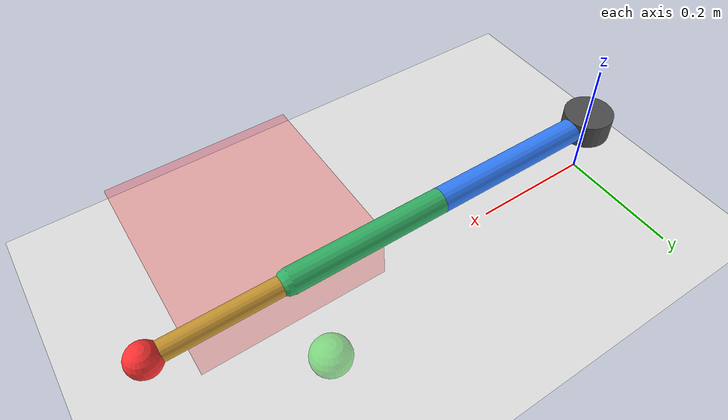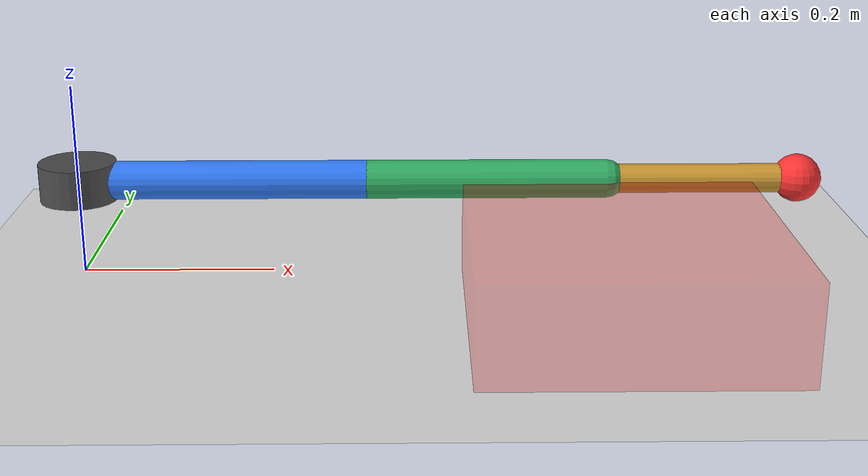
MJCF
<mujoco model="planar_3link_arm">
  <option timestep="0.02" gravity="0 0 -9.81"/>

  <default>
    <joint damping="1.0" armature="0.1"/>
    <geom contype="0" conaffinity="0"/>
  </default>

  <worldbody>
    <light diffuse="0.8 0.8 0.8" pos="0 0 3" dir="0 0 -1"/>
    <geom name="floor" type="plane" size="2 2 0.1" rgba="0.9 0.9 0.9 1"/>

    <!-- Arm base (fixed to world) -->
    <body name="base" pos="0 0 0.1">
      <geom name="base_geom" type="cylinder" size="0.04 0.02" rgba="0.3 0.3 0.3 1"/>

      <!-- Link 1: 0.3m -->
      <body name="link1" pos="0 0 0">
        <joint name="joint1" type="hinge" axis="0 0 1" range="-3.14 3.14"/>
        <geom name="link1_geom" type="capsule" fromto="0 0 0 0.3 0 0" size="0.02" mass="0.5" rgba="0.2 0.5 1.0 1"/>

        <!-- Link 2: 0.25m -->
        <body name="link2" pos="0.3 0 0">
          <joint name="joint2" type="hinge" axis="0 0 1" range="-3.14 3.14"/>
          <geom name="link2_geom" type="capsule" fromto="0 0 0 0.25 0 0" size="0.02" mass="0.4" rgba="0.2 0.7 0.4 1"/>

          <!-- Link 3: 0.2m -->
          <body name="link3" pos="0.25 0 0">
            <joint name="joint3" type="hinge" axis="0 0 1" range="-3.14 3.14"/>
            <geom name="link3_geom" type="capsule" fromto="0 0 0 0.2 0 0" size="0.015" mass="0.3" rgba="0.8 0.6 0.2 1"/>

            <!-- End-effector marker -->
            <body name="end_effector" pos="0.2 0 0">
              <geom name="ee_geom" type="sphere" size="0.025" rgba="1 0.2 0.2 1" mass="0.05"/>
            </body>
          </body>
        </body>
      </body>
    </body>

    <!-- Forbidden zone (visual only) -->
    <body name="forbidden_zone" pos="0.55 -0.15 0.05">
      <geom name="zone_geom" type="box" size="0.15 0.15 0.05" rgba="1 0 0 0.25"/>
    </body>

    <!-- Target marker (visual only) -->
    <body name="target" pos="0.55 0.1 0.05">
      <geom name="target_geom" type="sphere" size="0.03" rgba="0.2 0.9 0.2 0.5"/>
    </body>
  </worldbody>

  <actuator>
    <motor joint="joint1" gear="2.0" ctrllimited="true" ctrlrange="-1 1"/>
    <motor joint="joint2" gear="1.5" ctrllimited="true" ctrlrange="-1 1"/>
    <motor joint="joint3" gear="1.0" ctrllimited="true" ctrlrange="-1 1"/>
  </actuator>
</mujoco>
